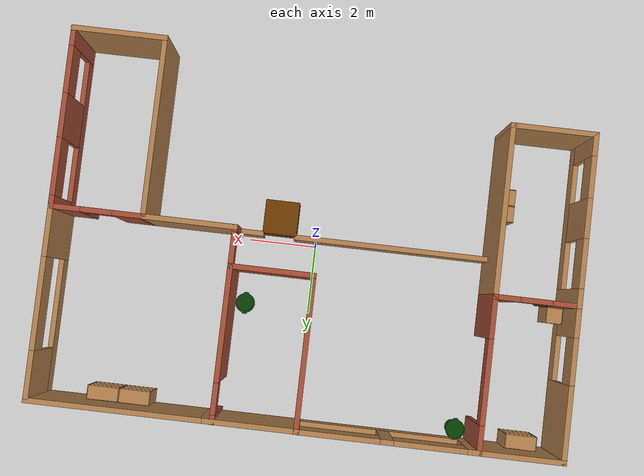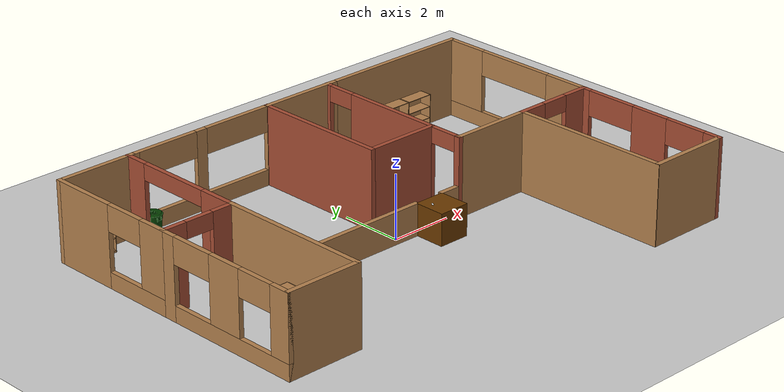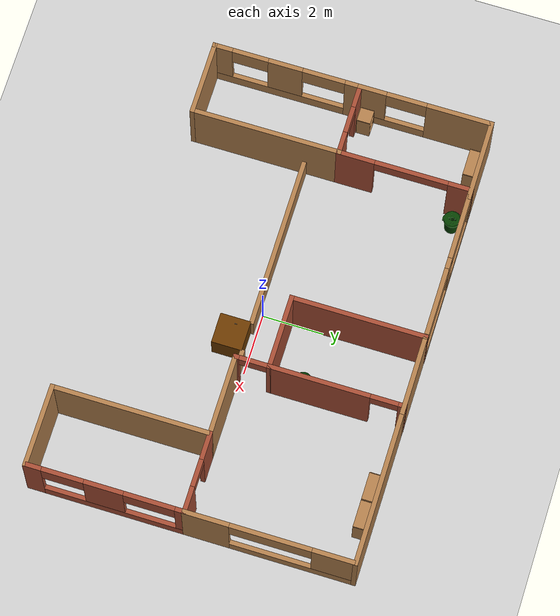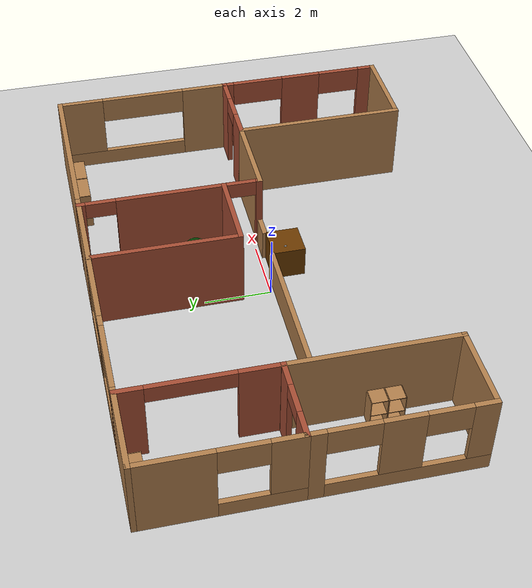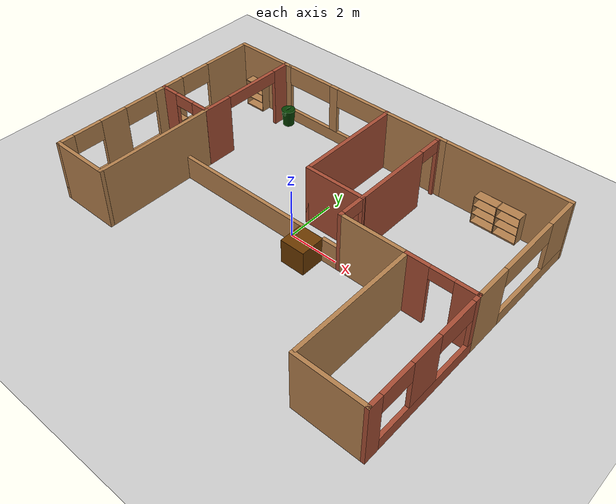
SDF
<?xml version="1.0" ?>
<sdf version="1.5">
    <world name="default">

        <physics type="ode">
        <max_step_size>0.0002</max_step_size>
        <real_time_factor>1</real_time_factor>
        <real_time_update_rate>5000</real_time_update_rate>
        <gravity>0 0 -9.81</gravity>
            <ode>
                <solver>
                <type>quick</type>
                <iters>50</iters>
                <sor>1.3</sor>
                </solver>
                <constraints>
                <cfm>0.0</cfm>
                <erp>0.2</erp>
                <contact_max_correcting_vel>10.0</contact_max_correcting_vel>
                <contact_surface_layer>0.001</contact_surface_layer>
                </constraints>
            </ode>
        </physics>

        <scene>
        <sky>
            <clouds>
                <speed>12</speed>
            </clouds>
        </sky>
        </scene>
        <!-- A global light source -->
        <include>
            <uri>model://sun</uri>
        </include>
        <!-- A ground plane -->
        <include>
            <uri>model://ground_plane</uri>
        </include>
        <!-- environment blocks, obstacles or stairs -->

        <include>
          <uri>model://turtlebot3_house</uri>
        </include>
            <model name="static_environment">
        <static>true</static>
            <link name="static_box">
                <pose>1.1 -0.7 0.5 0 0 0</pose>
                <collision name="static_box_collision">
                    <geometry>
                        <box>
                            <size>1 1 1</size>
                        </box>
                    </geometry>
                </collision>
                <visual name="static_box_visual">
                    <geometry>
                        <box>
                            <size>1 1 1</size>
                        </box>
                    </geometry>
                    <material>
                        <ambient>0.2 0.2 0.2 1.0</ambient>
                        <diffuse>.421 0.225 0.0 1.0</diffuse>
                    </material>
                </visual>
            </link>
        </model>
    </world>
</sdf>
